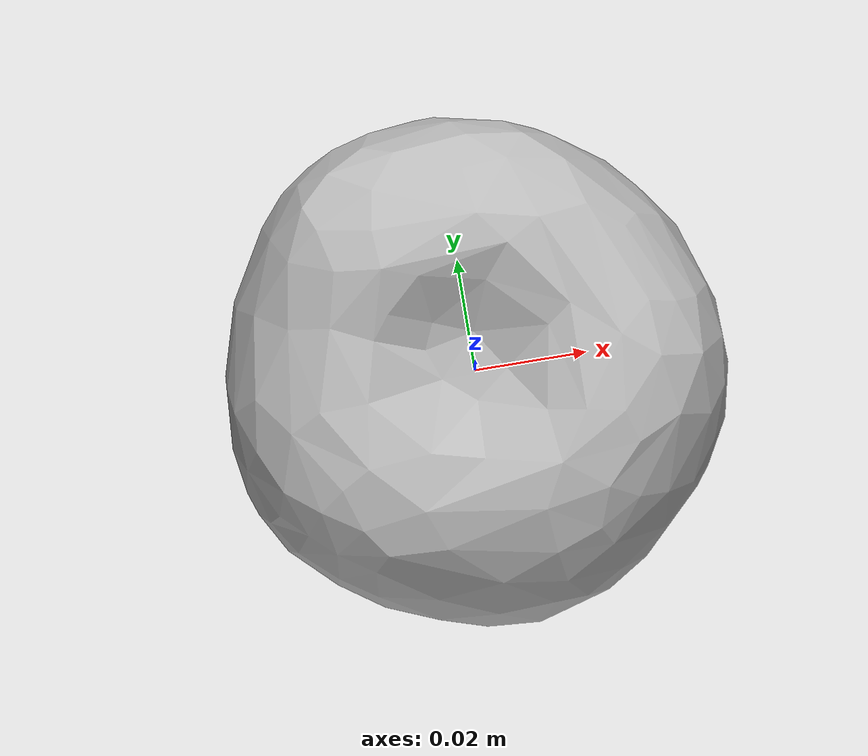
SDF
<?xml version="1.0" ?>
<sdf version="1.4">
    <model name='apple'>
      <link name='link'>
        <pose>0 0 0 0 0 0</pose>
        <inertial>
          <mass>0.3</mass>
          <inertia>
            <ixx>0.000243</ixx>
            <ixy>0</ixy>
            <ixz>0</ixz>
            <iyy>0.000243</iyy>
            <iyz>0</iyz>
            <izz>0.000243</izz>
          </inertia>
        </inertial>
        <visual name='apple'>
          <pose>0.0 0.0 0.0 0 0 0</pose>
          <geometry>
            <mesh>
              <uri>model://apple/meshes/apple.dae</uri>
            </mesh>
          </geometry>
          <material/>
        </visual>
        <collision name='apple'>
          <pose>0.0 0.0 0.0 0 0 0</pose>
          <geometry>
            <sphere>
              <radius>0.045</radius>
            </sphere>
          </geometry>
          <max_contacts>10</max_contacts>
          <surface>
            <bounce>
              <restitution_coefficient>0.2</restitution_coefficient>
              <threshold>0</threshold>
            </bounce>
            <friction>
              <ode/>
            </friction>
            <contact>
              <ode>
                <max_vel>10</max_vel>
              </ode>
            </contact>
          </surface>
        </collision>
        <velocity_decay>
          <linear>0</linear>
          <angular>0</angular>
        </velocity_decay>
        <self_collide>0</self_collide>
        <kinematic>0</kinematic>
        <gravity>1</gravity>
      </link>
      <static>0</static>
    </model>
</sdf>
